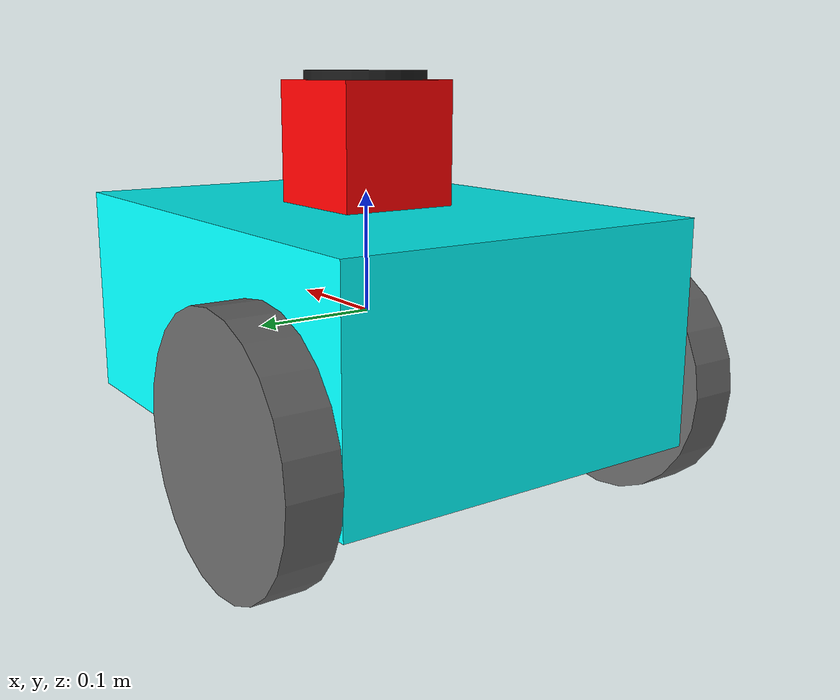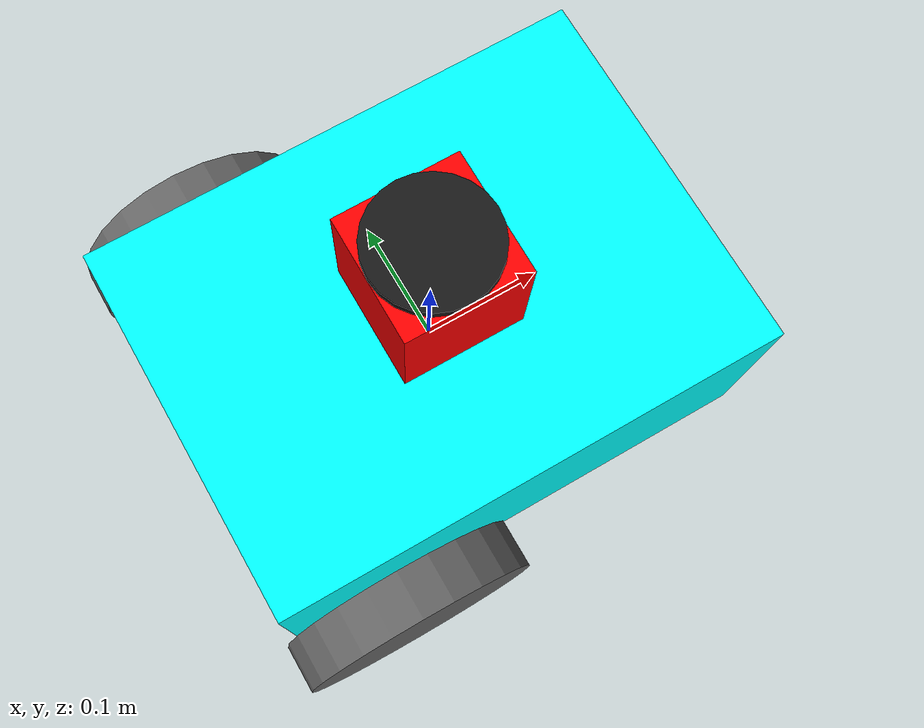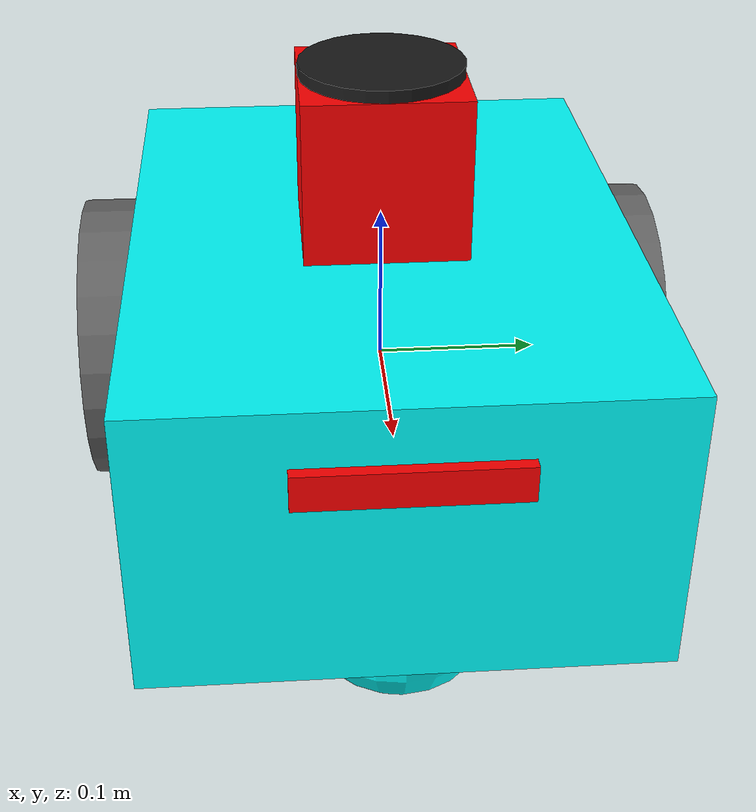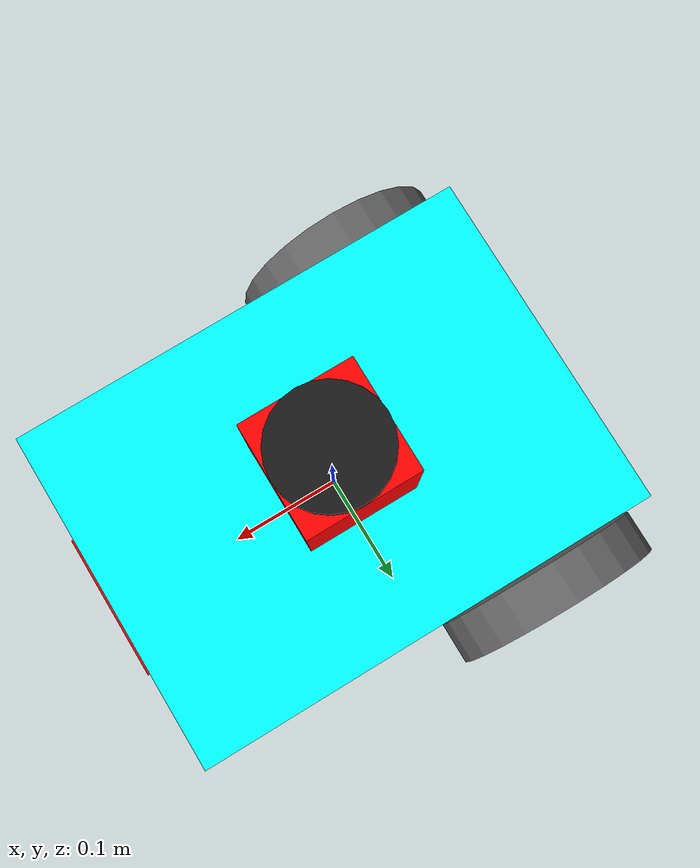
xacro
<?xml version="1.0"?>
<robot name="dif_bot" xmlns:xacro="http://www.ros.org/wiki/xacro">

  <!-- ==================== ROBOT BASE (links, joints, colisiones, inercias) ==================== -->
  <xacro:include filename="robot.urdf.xacro"/>

  <!-- ==================== PLUGINS DE SENSORES PARA GAZEBO ==================== -->
  <xacro:include filename="gz_sensors.xacro"/>

  <!-- ==================== PLUGIN DE CONTROL DIFERENCIAL PARA GAZEBO ==================== -->
  <xacro:include filename="gz_control.xacro"/>

</robot>

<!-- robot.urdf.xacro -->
<robot name="dif_bot" xmlns:xacro="http://ros.org/wiki/xacro">

  <!-- ==================== PROPIEDADES DEL ROBOT ==================== -->
  <xacro:property name="base_width"   value="0.31"/>
  <xacro:property name="base_length"  value="0.42"/>
  <xacro:property name="base_height"  value="0.18"/>
  <xacro:property name="wheel_radius" value="0.10"/>
  <xacro:property name="wheel_width"  value="0.04"/>
  <xacro:property name="wheel_ygap"   value="0.025"/>
  <xacro:property name="wheel_zoff"   value="0.05"/>
  <xacro:property name="wheel_xoff"   value="0.12"/>
  <xacro:property name="caster_xoff"  value="0.14"/>

  <!-- ==================== MATERIALES ==================== -->
  <material name="my_cyan"><color rgba="0.0 1.0 1.0 1.0"/></material>
  <material name="my_gray"><color rgba="0.4 0.4 0.4 1.0"/></material>

  <!-- ==================== MACROS DE INERCIA ==================== -->
  <xacro:macro name="box_inertia" params="m w h d">
    <inertial>
      <origin xyz="0 0 0" rpy="0 0 0"/>
      <mass value="${m}"/>
      <inertia ixx="${(m/12) * (h*h + d*d)}" ixy="0.0" ixz="0.0"
               iyy="${(m/12) * (w*w + d*d)}" iyz="0.0"
               izz="${(m/12) * (w*w + h*h)}"/>
    </inertial>
  </xacro:macro>

  <xacro:macro name="cylinder_inertia" params="m r h">
    <inertial>
      <origin xyz="0 0 0" rpy="${pi/2} 0 0"/>
      <mass value="${m}"/>
      <inertia ixx="${(m/12) * (3*r*r + h*h)}" ixy="0" ixz="0"
               iyy="${(m/12) * (3*r*r + h*h)}" iyz="0"
               izz="${(m/2) * (r*r)}"/>
    </inertial>
  </xacro:macro>

  <xacro:macro name="sphere_inertia" params="m r">
    <inertial>
      <mass value="${m}"/>
      <inertia ixx="${(2/5) * m * (r*r)}" ixy="0.0" ixz="0.0"
               iyy="${(2/5) * m * (r*r)}" iyz="0.0"
               izz="${(2/5) * m * (r*r)}"/>
    </inertial>
  </xacro:macro>

  <!-- ==================== BASE LINK ==================== -->
  <link name="base_link">
    <visual>
      <geometry><box size="${base_length} ${base_width} ${base_height}"/></geometry>
      <material name="my_cyan"/>
    </visual>
    <!-- COLISION EXACTA AL VISUAL (para Gazebo) -->
    <collision>
      <geometry><box size="${base_length} ${base_width} ${base_height}"/></geometry>
    </collision>
    <xacro:box_inertia m="15" w="${base_width}" d="${base_length}" h="${base_height}"/>
  </link>

  <!-- ==================== BASE FOOTPRINT ==================== -->
  <link name="base_footprint"/>
  <joint name="base_joint" type="fixed">
    <parent link="base_link"/>
    <child link="base_footprint"/>
    <origin xyz="0 0 ${-(wheel_radius + wheel_zoff)}" rpy="0 0 0"/>
  </joint>

  <!-- ==================== MACRO DE RUEDAS ==================== -->
  <xacro:macro name="wheel" params="prefix x_reflect y_reflect">
    <link name="${prefix}_link">
      <visual>
        <origin xyz="0 0 0" rpy="${pi/2} 0 0"/>
        <geometry><cylinder radius="${wheel_radius}" length="${wheel_width}"/></geometry>
        <material name="my_gray"/>
      </visual>
      <!-- COLISION EXACTA AL VISUAL (para Gazebo) -->
      <collision>
        <origin xyz="0 0 0" rpy="${pi/2} 0 0"/>
        <geometry><cylinder radius="${wheel_radius}" length="${wheel_width}"/></geometry>
      </collision>
      <xacro:cylinder_inertia m="0.5" r="${wheel_radius}" h="${wheel_width}"/>
    </link>
    <joint name="${prefix}_joint" type="continuous">
      <parent link="base_link"/>
      <child link="${prefix}_link"/>
      <origin xyz="${x_reflect*wheel_xoff} ${y_reflect*(base_width/2+wheel_ygap)} ${-wheel_zoff}" rpy="0 0 0"/>
      <axis xyz="0 1 0"/>
    </joint>
  </xacro:macro>

  <xacro:wheel prefix="drivewhl_l" x_reflect="-1" y_reflect="1"/>
  <xacro:wheel prefix="drivewhl_r" x_reflect="-1" y_reflect="-1"/>

  <!-- ==================== RUEDA CASTER ==================== -->
  <link name="front_caster">
    <visual>
      <geometry><sphere radius="${wheel_radius + wheel_zoff - (base_height/2)}"/></geometry>
      <material name="my_cyan"/>
    </visual>
    <!-- COLISION EXACTA AL VISUAL (para Gazebo) -->
    <collision>
      <geometry><sphere radius="${wheel_radius + wheel_zoff - (base_height/2)}"/></geometry>
    </collision>
    <xacro:sphere_inertia m="0.5" r="${wheel_radius + wheel_zoff - (base_height/2)}"/>
  </link>
  <joint name="caster_joint" type="fixed">
    <parent link="base_link"/>
    <child link="front_caster"/>
    <origin xyz="${caster_xoff} 0 ${-(base_height/2)}" rpy="0 0 0"/>
  </joint>

  <!-- ==================== INCLUIR SENSORES ==================== -->
  <xacro:include filename="sensors.xacro"/>

</robot>

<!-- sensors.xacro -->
<robot xmlns:xacro="http://www.ros.org/wiki/xacro">

  <!-- ==================== IMU ==================== -->
  <link name="imu_link">
    <visual>
      <geometry><box size="0.1 0.1 0.1"/></geometry>
      <material name="red_mat"><color rgba="1.0 0.0 0.0 1.0"/></material>
    </visual>
    <collision>
      <geometry><box size="0.1 0.1 0.1"/></geometry>
    </collision>
    <xacro:box_inertia m="0.1" w="0.1" d="0.1" h="0.1"/>
  </link>
  <joint name="imu_joint" type="fixed">
    <parent link="base_link"/>
    <child link="imu_link"/>
    <origin xyz="0 0 ${base_height/2 + 0.05}" rpy="0 0 0"/>
  </joint>

  <!-- ==================== LIDAR ==================== -->
  <link name="lidar_link">
    <visual>
      <geometry><cylinder radius="0.05" length="0.055"/></geometry>
      <material name="black_mat"><color rgba="0.1 0.1 0.1 1.0"/></material>
    </visual>
    <collision>
      <geometry><cylinder radius="0.05" length="0.055"/></geometry>
    </collision>
    <inertial>
      <mass value="0.125"/>
      <inertia ixx="0.001" ixy="0" ixz="0" iyy="0.001" iyz="0" izz="0.001"/>
    </inertial>
  </link>
  <joint name="lidar_joint" type="fixed">
    <parent link="base_link"/>
    <child link="lidar_link"/>
    <origin xyz="0 0 ${base_height/2 + 0.08}" rpy="0 0 0"/>
  </joint>

  <!-- ==================== CAMARA ==================== -->
  <link name="camera_link">
    <visual>
      <geometry><box size="0.015 0.13 0.022"/></geometry>
      <material name="red_mat"><color rgba="1.0 0.0 0.0 1.0"/></material>
    </visual>
    <collision>
      <geometry><box size="0.015 0.13 0.022"/></geometry>
    </collision>
    <inertial>
      <mass value="0.035"/>
      <inertia ixx="0.001" ixy="0" ixz="0" iyy="0.001" iyz="0" izz="0.001"/>
    </inertial>
  </link>
  <joint name="camera_joint" type="fixed">
    <parent link="base_link"/>
    <child link="camera_link"/>
    <origin xyz="${base_length/2} 0 ${base_height/4}" rpy="0 0 0"/>
  </joint>

  <!-- Frame auxiliar para la cámara de profundidad -->
  <link name="camera_depth_frame"/>
  <joint name="camera_depth_joint" type="fixed">
    <parent link="camera_link"/>
    <child link="camera_depth_frame"/>
    <origin xyz="0.002 0 0" rpy="0 0 0"/>
  </joint>

</robot>
